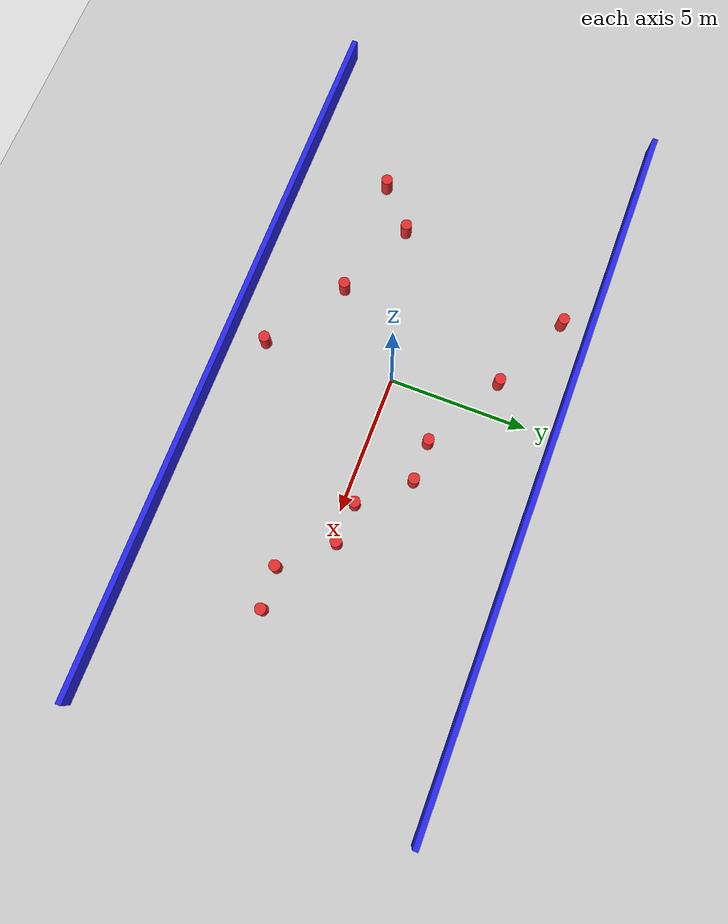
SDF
<?xml version='1.0' encoding='utf-8'?>
<sdf version="1.6">
  <world name="default">
    <plugin filename="gz-sim-physics-system" name="gz::sim::systems::Physics" /><plugin filename="gz-sim-user-commands-system" name="gz::sim::systems::UserCommands" /><plugin filename="gz-sim-scene-broadcaster-system" name="gz::sim::systems::SceneBroadcaster" /><plugin filename="gz-sim-sensors-system" name="gz::sim::systems::Sensors"><render_engine>ogre2</render_engine></plugin><plugin filename="gz-sim-contact-system" name="gz::sim::systems::Contact" /><plugin filename="gz-sim-imu-system" name="gz::sim::systems::Imu" /><plugin filename="gz-sim-navsat-system" name="gz::sim::systems::NavSat" /><light name="sun" type="directional">
      <cast_shadows>1</cast_shadows>
      <pose frame="">0 0 10 0 -0 0</pose>
      <diffuse>0.8 0.8 0.8 1</diffuse>
      <specular>0.1 0.1 0.1 1</specular>
      <attenuation>
        <range>1000</range>
        <constant>0.9</constant>
        <linear>0.01</linear>
        <quadratic>0.001</quadratic>
      </attenuation>
      <direction>-0.5 0.5 -1</direction>
    </light>
    <model name="ground_plane">
      <static>1</static>
      <link name="link">
        <collision name="collision">
          <geometry>
            <plane>
              <normal>0 0 1</normal>
              <size>100 100</size>
            </plane>
          </geometry>
          <surface>
            <friction>
              <ode>
                <mu>100</mu>
                <mu2>50</mu2>
              </ode>
              <torsional>
                <ode />
              </torsional>
            </friction>
            <contact>
              <ode />
            </contact>
            <bounce />
          </surface>
          <max_contacts>10</max_contacts>
        </collision>
        <visual name="visual">
          <cast_shadows>0</cast_shadows>
          <geometry>
            <plane>
              <normal>0 0 1</normal>
              <size>100 100</size>
            </plane>
          </geometry>
          <material>
            <script>
              <uri>file://media/materials/scripts/gazebo.material</uri>
              <name>Gazebo/Grey</name>
            </script>
          </material>
        </visual>
        <self_collide>0</self_collide>
        <kinematic>0</kinematic>
        <gravity>1</gravity>
      </link>
    </model>
    <gravity>0 0 -9.8</gravity>
    <magnetic_field>6e-06 2.3e-05 -4.2e-05</magnetic_field>
    <atmosphere type="adiabatic" />
    <physics name="default_physics" default="0" type="ode">
      <max_step_size>0.001</max_step_size>
      <real_time_factor>1</real_time_factor>
      <real_time_update_rate>1000</real_time_update_rate>
    </physics>
    <scene>
      <ambient>0.4 0.4 0.4 1</ambient>
      <background>0.7 0.7 0.7 1</background>
      <shadows>1</shadows>
    </scene>
    <spherical_coordinates>
      <surface_model>EARTH_WGS84</surface_model>
      <latitude_deg>0</latitude_deg>
      <longitude_deg>0</longitude_deg>
      <elevation>0</elevation>
      <heading_deg>0</heading_deg>
    </spherical_coordinates>
    <model name="wall_south">
      <static>1</static>
      <pose frame="">1.000000 -6.000000 0.500000 0 0 0</pose>
      <link name="link">
        <collision name="collision">
          <geometry>
            <box>
              <size>26.000000 0.200000 1.000000</size>
            </box>
          </geometry>
          <max_contacts>10</max_contacts>
          <surface>
            <contact><collide_bitmask>0x01</collide_bitmask><ode /></contact>
            <bounce />
            <friction><torsional><ode /></torsional><ode /></friction>
          </surface>
        </collision>
        <visual name="visual">
          <geometry>
            <box>
              <size>26.000000 0.200000 1.000000</size>
            </box>
          </geometry>
          <material>
            <ambient>0.10 0.10 0.85 1</ambient>
            <diffuse>0.15 0.15 0.95 1</diffuse>
          </material>
        </visual>
        <self_collide>0</self_collide>
        <kinematic>0</kinematic>
        <gravity>1</gravity>
        <sensor name="sensor_contact" type="contact"><contact><collision>collision</collision></contact></sensor>
      </link>
      <plugin filename="gz-sim-touchplugin-system" name="gz::sim::systems::TouchPlugin"><target>robot</target><namespace>robot</namespace><time>0.001</time><enabled>true</enabled></plugin>
    </model>
    <model name="wall_north">
      <static>1</static>
      <pose frame="">1.000000 6.000000 0.500000 0 0 0</pose>
      <link name="link">
        <collision name="collision">
          <geometry>
            <box>
              <size>26.000000 0.200000 1.000000</size>
            </box>
          </geometry>
          <max_contacts>10</max_contacts>
          <surface>
            <contact><collide_bitmask>0x01</collide_bitmask><ode /></contact>
            <bounce />
            <friction><torsional><ode /></torsional><ode /></friction>
          </surface>
        </collision>
        <visual name="visual">
          <geometry>
            <box>
              <size>26.000000 0.200000 1.000000</size>
            </box>
          </geometry>
          <material>
            <ambient>0.10 0.10 0.85 1</ambient>
            <diffuse>0.15 0.15 0.95 1</diffuse>
          </material>
        </visual>
        <self_collide>0</self_collide>
        <kinematic>0</kinematic>
        <gravity>1</gravity>
        <sensor name="sensor_contact" type="contact"><contact><collision>collision</collision></contact></sensor>
      </link>
      <plugin filename="gz-sim-touchplugin-system" name="gz::sim::systems::TouchPlugin"><target>robot</target><namespace>robot</namespace><time>0.001</time><enabled>true</enabled></plugin>
    </model>
    <model name="obstacle_0">
      <pose frame="">9.000000 -1.200000 0.400000 0 0 0</pose>
      <link name="link">
        <gravity>0</gravity>
        <inertial>
          <mass>10.0</mass>
          <inertia>
            <ixx>0.6333</ixx>
            <ixy>0</ixy>
            <ixz>0</ixz>
            <iyy>0.6333</iyy>
            <iyz>0</iyz>
            <izz>0.2000</izz>
          </inertia>
        </inertial>
        <collision name="collision">
          <geometry>
            <cylinder>
              <radius>0.200</radius>
              <length>0.800</length>
            </cylinder>
          </geometry>
          <max_contacts>10</max_contacts>
          <surface>
            <contact><collide_bitmask>0x0002</collide_bitmask><ode /></contact>
            <bounce />
            <friction><torsional><ode /></torsional><ode /></friction>
          </surface>
        </collision>
        <visual name="visual">
          <geometry>
            <cylinder>
              <radius>0.200</radius>
              <length>0.800</length>
            </cylinder>
          </geometry>
          <material>
            <ambient>0.850 0.130 0.130 1</ambient>
            <diffuse>0.900 0.170 0.170 1</diffuse>
          </material>
        </visual>
        <sensor name="sensor_contact" type="contact"><contact><collision>collision</collision></contact></sensor>
      </link>
      <plugin filename="barn_dynamic_obstacle" name="barn::sim::DynamicObstacle">
        <speed>0.90</speed>
        <loop>true</loop>
        <waypoint>9.000 -1.200</waypoint>
        <waypoint>9.000 0.000</waypoint>
        <waypoint>9.000 1.200</waypoint>
      </plugin>
      <plugin filename="gz-sim-touchplugin-system" name="gz::sim::systems::TouchPlugin"><target>robot</target><namespace>robot</namespace><time>0.001</time><enabled>true</enabled></plugin>
    </model>
    <model name="obstacle_1">
      <pose frame="">7.545000 -1.300000 0.400000 0 0 0</pose>
      <link name="link">
        <gravity>0</gravity>
        <inertial>
          <mass>10.0</mass>
          <inertia>
            <ixx>0.6333</ixx>
            <ixy>0</ixy>
            <ixz>0</ixz>
            <iyy>0.6333</iyy>
            <iyz>0</iyz>
            <izz>0.2000</izz>
          </inertia>
        </inertial>
        <collision name="collision">
          <geometry>
            <cylinder>
              <radius>0.200</radius>
              <length>0.800</length>
            </cylinder>
          </geometry>
          <max_contacts>10</max_contacts>
          <surface>
            <contact><collide_bitmask>0x0004</collide_bitmask><ode /></contact>
            <bounce />
            <friction><torsional><ode /></torsional><ode /></friction>
          </surface>
        </collision>
        <visual name="visual">
          <geometry>
            <cylinder>
              <radius>0.200</radius>
              <length>0.800</length>
            </cylinder>
          </geometry>
          <material>
            <ambient>0.850 0.130 0.130 1</ambient>
            <diffuse>0.900 0.170 0.170 1</diffuse>
          </material>
        </visual>
        <sensor name="sensor_contact" type="contact"><contact><collision>collision</collision></contact></sensor>
      </link>
      <plugin filename="barn_dynamic_obstacle" name="barn::sim::DynamicObstacle">
        <speed>1.25</speed>
        <loop>true</loop>
        <waypoint>7.545 -1.300</waypoint>
        <waypoint>7.545 -2.500</waypoint>
        <waypoint>7.545 -3.700</waypoint>
      </plugin>
      <plugin filename="gz-sim-touchplugin-system" name="gz::sim::systems::TouchPlugin"><target>robot</target><namespace>robot</namespace><time>0.001</time><enabled>true</enabled></plugin>
    </model>
    <model name="obstacle_2">
      <pose frame="">6.091000 0.300000 0.400000 0 0 0</pose>
      <link name="link">
        <gravity>0</gravity>
        <inertial>
          <mass>10.0</mass>
          <inertia>
            <ixx>0.6333</ixx>
            <ixy>0</ixy>
            <ixz>0</ixz>
            <iyy>0.6333</iyy>
            <iyz>0</iyz>
            <izz>0.2000</izz>
          </inertia>
        </inertial>
        <collision name="collision">
          <geometry>
            <cylinder>
              <radius>0.200</radius>
              <length>0.800</length>
            </cylinder>
          </geometry>
          <max_contacts>10</max_contacts>
          <surface>
            <contact><collide_bitmask>0x0008</collide_bitmask><ode /></contact>
            <bounce />
            <friction><torsional><ode /></torsional><ode /></friction>
          </surface>
        </collision>
        <visual name="visual">
          <geometry>
            <cylinder>
              <radius>0.200</radius>
              <length>0.800</length>
            </cylinder>
          </geometry>
          <material>
            <ambient>0.850 0.130 0.130 1</ambient>
            <diffuse>0.900 0.170 0.170 1</diffuse>
          </material>
        </visual>
        <sensor name="sensor_contact" type="contact"><contact><collision>collision</collision></contact></sensor>
      </link>
      <plugin filename="barn_dynamic_obstacle" name="barn::sim::DynamicObstacle">
        <speed>1.00</speed>
        <loop>true</loop>
        <waypoint>6.091 0.300</waypoint>
        <waypoint>6.091 1.500</waypoint>
        <waypoint>6.091 2.700</waypoint>
      </plugin>
      <plugin filename="gz-sim-touchplugin-system" name="gz::sim::systems::TouchPlugin"><target>robot</target><namespace>robot</namespace><time>0.001</time><enabled>true</enabled></plugin>
    </model>
    <model name="obstacle_3">
      <pose frame="">4.636000 0.400000 0.400000 0 0 0</pose>
      <link name="link">
        <gravity>0</gravity>
        <inertial>
          <mass>10.0</mass>
          <inertia>
            <ixx>0.6333</ixx>
            <ixy>0</ixy>
            <ixz>0</ixz>
            <iyy>0.6333</iyy>
            <iyz>0</iyz>
            <izz>0.2000</izz>
          </inertia>
        </inertial>
        <collision name="collision">
          <geometry>
            <cylinder>
              <radius>0.200</radius>
              <length>0.800</length>
            </cylinder>
          </geometry>
          <max_contacts>10</max_contacts>
          <surface>
            <contact><collide_bitmask>0x0010</collide_bitmask><ode /></contact>
            <bounce />
            <friction><torsional><ode /></torsional><ode /></friction>
          </surface>
        </collision>
        <visual name="visual">
          <geometry>
            <cylinder>
              <radius>0.200</radius>
              <length>0.800</length>
            </cylinder>
          </geometry>
          <material>
            <ambient>0.850 0.130 0.130 1</ambient>
            <diffuse>0.900 0.170 0.170 1</diffuse>
          </material>
        </visual>
        <sensor name="sensor_contact" type="contact"><contact><collision>collision</collision></contact></sensor>
      </link>
      <plugin filename="barn_dynamic_obstacle" name="barn::sim::DynamicObstacle">
        <speed>1.35</speed>
        <loop>true</loop>
        <waypoint>4.636 0.400</waypoint>
        <waypoint>4.636 -0.800</waypoint>
        <waypoint>4.636 -2.000</waypoint>
      </plugin>
      <plugin filename="gz-sim-touchplugin-system" name="gz::sim::systems::TouchPlugin"><target>robot</target><namespace>robot</namespace><time>0.001</time><enabled>true</enabled></plugin>
    </model>
    <model name="obstacle_4">
      <pose frame="">3.182000 2.000000 0.400000 0 0 0</pose>
      <link name="link">
        <gravity>0</gravity>
        <inertial>
          <mass>10.0</mass>
          <inertia>
            <ixx>0.6333</ixx>
            <ixy>0</ixy>
            <ixz>0</ixz>
            <iyy>0.6333</iyy>
            <iyz>0</iyz>
            <izz>0.2000</izz>
          </inertia>
        </inertial>
        <collision name="collision">
          <geometry>
            <cylinder>
              <radius>0.200</radius>
              <length>0.800</length>
            </cylinder>
          </geometry>
          <max_contacts>10</max_contacts>
          <surface>
            <contact><collide_bitmask>0x0020</collide_bitmask><ode /></contact>
            <bounce />
            <friction><torsional><ode /></torsional><ode /></friction>
          </surface>
        </collision>
        <visual name="visual">
          <geometry>
            <cylinder>
              <radius>0.200</radius>
              <length>0.800</length>
            </cylinder>
          </geometry>
          <material>
            <ambient>0.850 0.130 0.130 1</ambient>
            <diffuse>0.900 0.170 0.170 1</diffuse>
          </material>
        </visual>
        <sensor name="sensor_contact" type="contact"><contact><collision>collision</collision></contact></sensor>
      </link>
      <plugin filename="barn_dynamic_obstacle" name="barn::sim::DynamicObstacle">
        <speed>1.10</speed>
        <loop>true</loop>
        <waypoint>3.182 2.000</waypoint>
        <waypoint>3.182 3.200</waypoint>
        <waypoint>3.182 4.400</waypoint>
      </plugin>
      <plugin filename="gz-sim-touchplugin-system" name="gz::sim::systems::TouchPlugin"><target>robot</target><namespace>robot</namespace><time>0.001</time><enabled>true</enabled></plugin>
    </model>
    <model name="obstacle_5">
      <pose frame="">1.727000 2.000000 0.400000 0 0 0</pose>
      <link name="link">
        <gravity>0</gravity>
        <inertial>
          <mass>10.0</mass>
          <inertia>
            <ixx>0.6333</ixx>
            <ixy>0</ixy>
            <ixz>0</ixz>
            <iyy>0.6333</iyy>
            <iyz>0</iyz>
            <izz>0.2000</izz>
          </inertia>
        </inertial>
        <collision name="collision">
          <geometry>
            <cylinder>
              <radius>0.200</radius>
              <length>0.800</length>
            </cylinder>
          </geometry>
          <max_contacts>10</max_contacts>
          <surface>
            <contact><collide_bitmask>0x0040</collide_bitmask><ode /></contact>
            <bounce />
            <friction><torsional><ode /></torsional><ode /></friction>
          </surface>
        </collision>
        <visual name="visual">
          <geometry>
            <cylinder>
              <radius>0.200</radius>
              <length>0.800</length>
            </cylinder>
          </geometry>
          <material>
            <ambient>0.850 0.130 0.130 1</ambient>
            <diffuse>0.900 0.170 0.170 1</diffuse>
          </material>
        </visual>
        <sensor name="sensor_contact" type="contact"><contact><collision>collision</collision></contact></sensor>
      </link>
      <plugin filename="barn_dynamic_obstacle" name="barn::sim::DynamicObstacle">
        <speed>1.45</speed>
        <loop>true</loop>
        <waypoint>1.727 2.000</waypoint>
        <waypoint>1.727 0.800</waypoint>
        <waypoint>1.727 -0.400</waypoint>
      </plugin>
      <plugin filename="gz-sim-touchplugin-system" name="gz::sim::systems::TouchPlugin"><target>robot</target><namespace>robot</namespace><time>0.001</time><enabled>true</enabled></plugin>
    </model>
    <model name="obstacle_6">
      <pose frame="">0.273000 -4.700000 0.400000 0 0 0</pose>
      <link name="link">
        <gravity>0</gravity>
        <inertial>
          <mass>10.0</mass>
          <inertia>
            <ixx>0.6333</ixx>
            <ixy>0</ixy>
            <ixz>0</ixz>
            <iyy>0.6333</iyy>
            <iyz>0</iyz>
            <izz>0.2000</izz>
          </inertia>
        </inertial>
        <collision name="collision">
          <geometry>
            <cylinder>
              <radius>0.200</radius>
              <length>0.800</length>
            </cylinder>
          </geometry>
          <max_contacts>10</max_contacts>
          <surface>
            <contact><collide_bitmask>0x0080</collide_bitmask><ode /></contact>
            <bounce />
            <friction><torsional><ode /></torsional><ode /></friction>
          </surface>
        </collision>
        <visual name="visual">
          <geometry>
            <cylinder>
              <radius>0.200</radius>
              <length>0.800</length>
            </cylinder>
          </geometry>
          <material>
            <ambient>0.850 0.130 0.130 1</ambient>
            <diffuse>0.900 0.170 0.170 1</diffuse>
          </material>
        </visual>
        <sensor name="sensor_contact" type="contact"><contact><collision>collision</collision></contact></sensor>
      </link>
      <plugin filename="barn_dynamic_obstacle" name="barn::sim::DynamicObstacle">
        <speed>1.20</speed>
        <loop>true</loop>
        <waypoint>0.273 -4.700</waypoint>
        <waypoint>0.273 -3.500</waypoint>
        <waypoint>0.273 -2.300</waypoint>
      </plugin>
      <plugin filename="gz-sim-touchplugin-system" name="gz::sim::systems::TouchPlugin"><target>robot</target><namespace>robot</namespace><time>0.001</time><enabled>true</enabled></plugin>
    </model>
    <model name="obstacle_7">
      <pose frame="">-1.182000 3.600000 0.400000 0 0 0</pose>
      <link name="link">
        <gravity>0</gravity>
        <inertial>
          <mass>10.0</mass>
          <inertia>
            <ixx>0.6333</ixx>
            <ixy>0</ixy>
            <ixz>0</ixz>
            <iyy>0.6333</iyy>
            <iyz>0</iyz>
            <izz>0.2000</izz>
          </inertia>
        </inertial>
        <collision name="collision">
          <geometry>
            <cylinder>
              <radius>0.200</radius>
              <length>0.800</length>
            </cylinder>
          </geometry>
          <max_contacts>10</max_contacts>
          <surface>
            <contact><collide_bitmask>0x0100</collide_bitmask><ode /></contact>
            <bounce />
            <friction><torsional><ode /></torsional><ode /></friction>
          </surface>
        </collision>
        <visual name="visual">
          <geometry>
            <cylinder>
              <radius>0.200</radius>
              <length>0.800</length>
            </cylinder>
          </geometry>
          <material>
            <ambient>0.850 0.130 0.130 1</ambient>
            <diffuse>0.900 0.170 0.170 1</diffuse>
          </material>
        </visual>
        <sensor name="sensor_contact" type="contact"><contact><collision>collision</collision></contact></sensor>
      </link>
      <plugin filename="barn_dynamic_obstacle" name="barn::sim::DynamicObstacle">
        <speed>0.95</speed>
        <loop>true</loop>
        <waypoint>-1.182 3.600</waypoint>
        <waypoint>-1.182 2.400</waypoint>
        <waypoint>-1.182 1.200</waypoint>
      </plugin>
      <plugin filename="gz-sim-touchplugin-system" name="gz::sim::systems::TouchPlugin"><target>robot</target><namespace>robot</namespace><time>0.001</time><enabled>true</enabled></plugin>
    </model>
    <model name="obstacle_8">
      <pose frame="">-2.636000 -2.800000 0.400000 0 0 0</pose>
      <link name="link">
        <gravity>0</gravity>
        <inertial>
          <mass>10.0</mass>
          <inertia>
            <ixx>0.6333</ixx>
            <ixy>0</ixy>
            <ixz>0</ixz>
            <iyy>0.6333</iyy>
            <iyz>0</iyz>
            <izz>0.2000</izz>
          </inertia>
        </inertial>
        <collision name="collision">
          <geometry>
            <cylinder>
              <radius>0.200</radius>
              <length>0.800</length>
            </cylinder>
          </geometry>
          <max_contacts>10</max_contacts>
          <surface>
            <contact><collide_bitmask>0x0200</collide_bitmask><ode /></contact>
            <bounce />
            <friction><torsional><ode /></torsional><ode /></friction>
          </surface>
        </collision>
        <visual name="visual">
          <geometry>
            <cylinder>
              <radius>0.200</radius>
              <length>0.800</length>
            </cylinder>
          </geometry>
          <material>
            <ambient>0.850 0.130 0.130 1</ambient>
            <diffuse>0.900 0.170 0.170 1</diffuse>
          </material>
        </visual>
        <sensor name="sensor_contact" type="contact"><contact><collision>collision</collision></contact></sensor>
      </link>
      <plugin filename="barn_dynamic_obstacle" name="barn::sim::DynamicObstacle">
        <speed>1.30</speed>
        <loop>true</loop>
        <waypoint>-2.636 -2.800</waypoint>
        <waypoint>-2.636 -1.600</waypoint>
        <waypoint>-2.636 -0.400</waypoint>
      </plugin>
      <plugin filename="gz-sim-touchplugin-system" name="gz::sim::systems::TouchPlugin"><target>robot</target><namespace>robot</namespace><time>0.001</time><enabled>true</enabled></plugin>
    </model>
    <model name="obstacle_9">
      <pose frame="">-4.091000 5.000000 0.400000 0 0 0</pose>
      <link name="link">
        <gravity>0</gravity>
        <inertial>
          <mass>10.0</mass>
          <inertia>
            <ixx>0.6333</ixx>
            <ixy>0</ixy>
            <ixz>0</ixz>
            <iyy>0.6333</iyy>
            <iyz>0</iyz>
            <izz>0.2000</izz>
          </inertia>
        </inertial>
        <collision name="collision">
          <geometry>
            <cylinder>
              <radius>0.200</radius>
              <length>0.800</length>
            </cylinder>
          </geometry>
          <max_contacts>10</max_contacts>
          <surface>
            <contact><collide_bitmask>0x0400</collide_bitmask><ode /></contact>
            <bounce />
            <friction><torsional><ode /></torsional><ode /></friction>
          </surface>
        </collision>
        <visual name="visual">
          <geometry>
            <cylinder>
              <radius>0.200</radius>
              <length>0.800</length>
            </cylinder>
          </geometry>
          <material>
            <ambient>0.850 0.130 0.130 1</ambient>
            <diffuse>0.900 0.170 0.170 1</diffuse>
          </material>
        </visual>
        <sensor name="sensor_contact" type="contact"><contact><collision>collision</collision></contact></sensor>
      </link>
      <plugin filename="barn_dynamic_obstacle" name="barn::sim::DynamicObstacle">
        <speed>1.05</speed>
        <loop>true</loop>
        <waypoint>-4.091 5.000</waypoint>
        <waypoint>-4.091 3.800</waypoint>
        <waypoint>-4.091 2.600</waypoint>
      </plugin>
      <plugin filename="gz-sim-touchplugin-system" name="gz::sim::systems::TouchPlugin"><target>robot</target><namespace>robot</namespace><time>0.001</time><enabled>true</enabled></plugin>
    </model>
    <model name="obstacle_10">
      <pose frame="">-5.545000 -1.500000 0.400000 0 0 0</pose>
      <link name="link">
        <gravity>0</gravity>
        <inertial>
          <mass>10.0</mass>
          <inertia>
            <ixx>0.6333</ixx>
            <ixy>0</ixy>
            <ixz>0</ixz>
            <iyy>0.6333</iyy>
            <iyz>0</iyz>
            <izz>0.2000</izz>
          </inertia>
        </inertial>
        <collision name="collision">
          <geometry>
            <cylinder>
              <radius>0.200</radius>
              <length>0.800</length>
            </cylinder>
          </geometry>
          <max_contacts>10</max_contacts>
          <surface>
            <contact><collide_bitmask>0x0800</collide_bitmask><ode /></contact>
            <bounce />
            <friction><torsional><ode /></torsional><ode /></friction>
          </surface>
        </collision>
        <visual name="visual">
          <geometry>
            <cylinder>
              <radius>0.200</radius>
              <length>0.800</length>
            </cylinder>
          </geometry>
          <material>
            <ambient>0.850 0.130 0.130 1</ambient>
            <diffuse>0.900 0.170 0.170 1</diffuse>
          </material>
        </visual>
        <sensor name="sensor_contact" type="contact"><contact><collision>collision</collision></contact></sensor>
      </link>
      <plugin filename="barn_dynamic_obstacle" name="barn::sim::DynamicObstacle">
        <speed>1.40</speed>
        <loop>true</loop>
        <waypoint>-5.545 -1.500</waypoint>
        <waypoint>-5.545 -0.300</waypoint>
        <waypoint>-5.545 0.900</waypoint>
      </plugin>
      <plugin filename="gz-sim-touchplugin-system" name="gz::sim::systems::TouchPlugin"><target>robot</target><namespace>robot</namespace><time>0.001</time><enabled>true</enabled></plugin>
    </model>
    <model name="obstacle_11">
      <pose frame="">-7.000000 -2.800000 0.400000 0 0 0</pose>
      <link name="link">
        <gravity>0</gravity>
        <inertial>
          <mass>10.0</mass>
          <inertia>
            <ixx>0.6333</ixx>
            <ixy>0</ixy>
            <ixz>0</ixz>
            <iyy>0.6333</iyy>
            <iyz>0</iyz>
            <izz>0.2000</izz>
          </inertia>
        </inertial>
        <collision name="collision">
          <geometry>
            <cylinder>
              <radius>0.200</radius>
              <length>0.800</length>
            </cylinder>
          </geometry>
          <max_contacts>10</max_contacts>
          <surface>
            <contact><collide_bitmask>0x1000</collide_bitmask><ode /></contact>
            <bounce />
            <friction><torsional><ode /></torsional><ode /></friction>
          </surface>
        </collision>
        <visual name="visual">
          <geometry>
            <cylinder>
              <radius>0.200</radius>
              <length>0.800</length>
            </cylinder>
          </geometry>
          <material>
            <ambient>0.850 0.130 0.130 1</ambient>
            <diffuse>0.900 0.170 0.170 1</diffuse>
          </material>
        </visual>
        <sensor name="sensor_contact" type="contact"><contact><collision>collision</collision></contact></sensor>
      </link>
      <plugin filename="barn_dynamic_obstacle" name="barn::sim::DynamicObstacle">
        <speed>1.15</speed>
        <loop>true</loop>
        <waypoint>-7.000 -2.800</waypoint>
        <waypoint>-7.000 -4.000</waypoint>
        <waypoint>-7.000 -5.200</waypoint>
      </plugin>
      <plugin filename="gz-sim-touchplugin-system" name="gz::sim::systems::TouchPlugin"><target>robot</target><namespace>robot</namespace><time>0.001</time><enabled>true</enabled></plugin>
    </model>
  </world>
</sdf>
